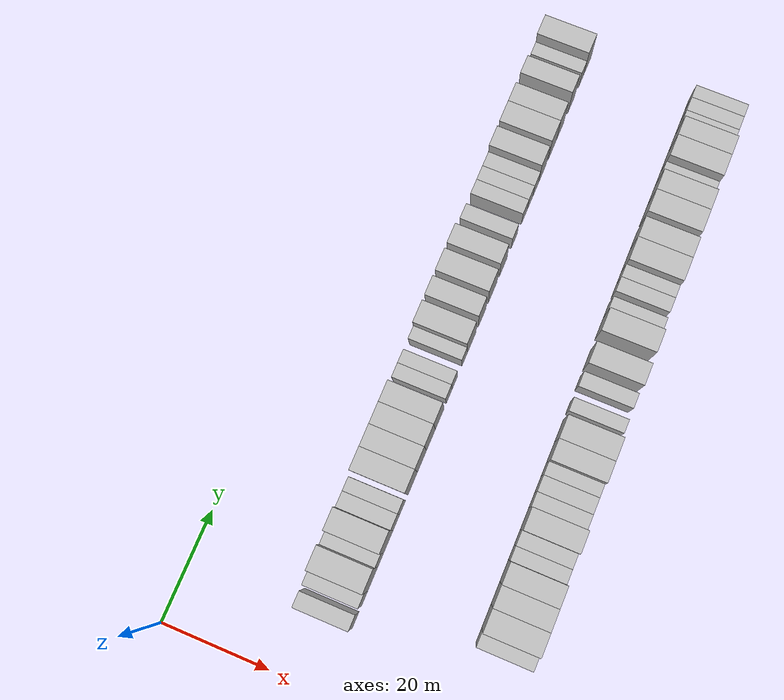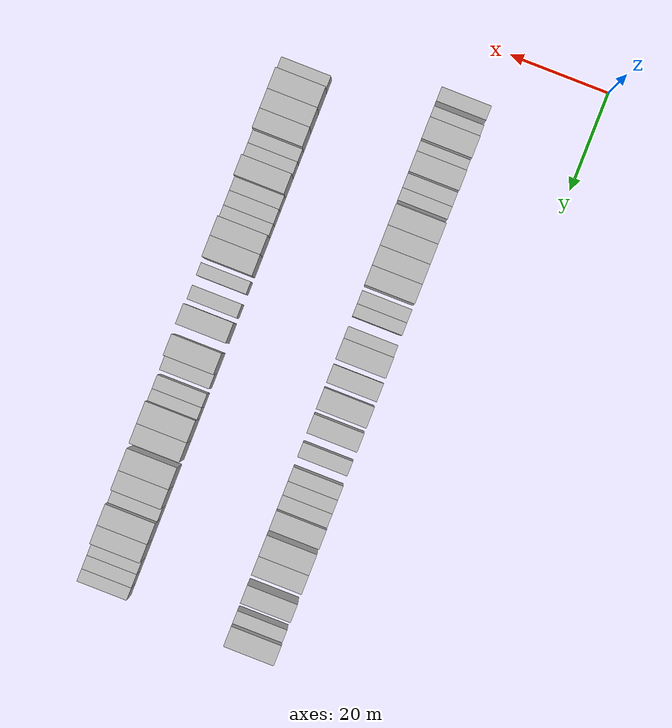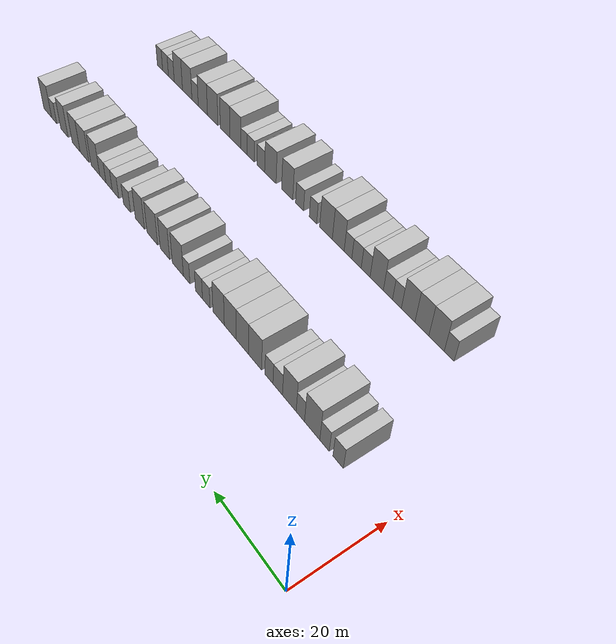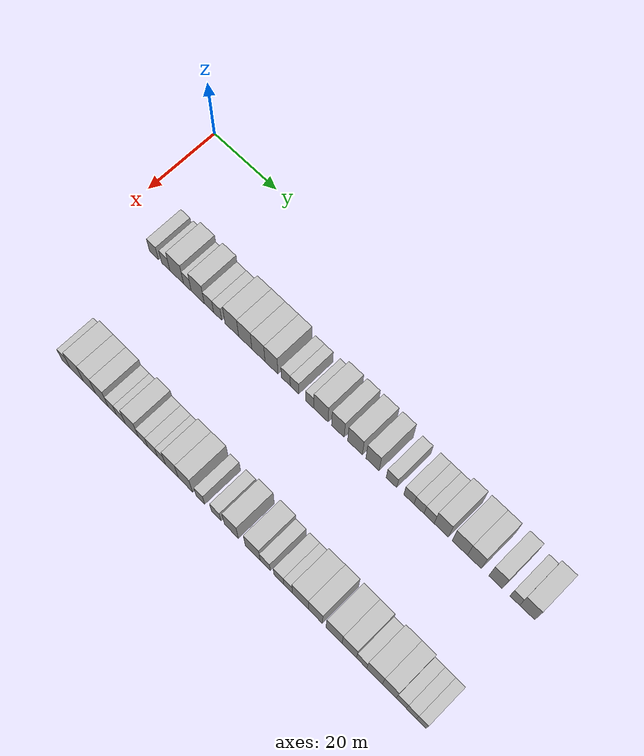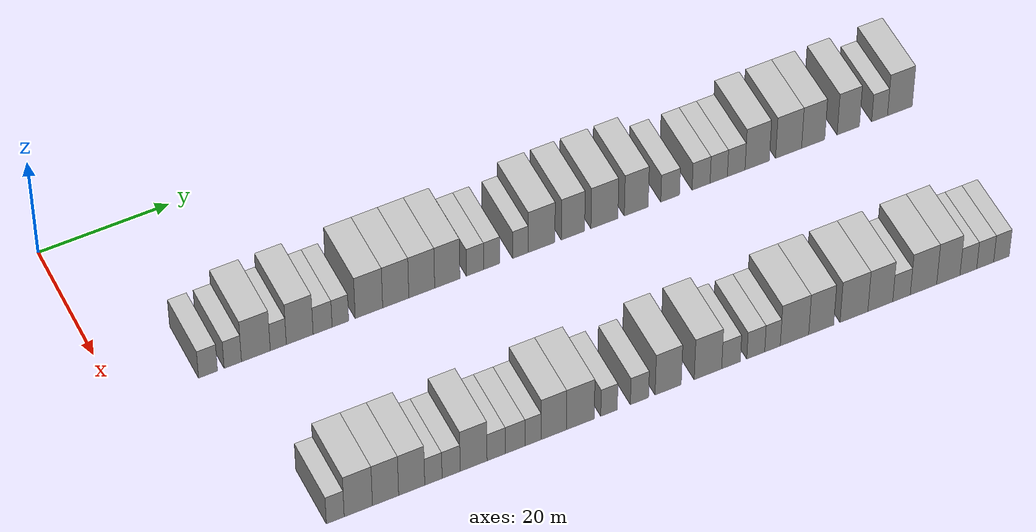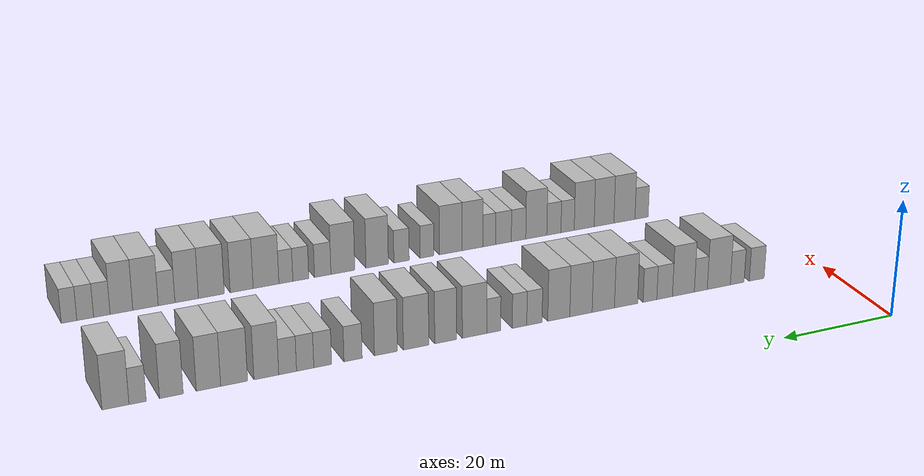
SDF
<sdf version="1.6">
 <world name="default">
  <model name="building_57">
   <static>1</static>
   <pose>25.0000 12.8728 0 0.000000 0.000000 0.000000</pose>
   <link name="link">
    <pose>0 0 3.00 0 0 0</pose>
    <collision name="collision"><geometry><box><size>10.0000 2.8482 6.0000</size></box></geometry></collision>
    <visual name="visual">
     <cast_shadows>0</cast_shadows>
     <geometry><box><size>10.0000 2.8482 6.0000</size></box></geometry>
     <material>
      <script>
       <uri>model://HANNAS_wall/materials/scripts</uri>
       <uri>model://HANNAS_wall/materials/textures</uri>
       <name>vrc/HANNAS_wall</name>
      </script>
     </material>
    </visual>
   </link>
  </model>
  <model name="building_58">
   <static>1</static>
   <pose>25.0000 16.6076 0 0.000000 0.000000 0.000000</pose>
   <link name="link">
    <pose>0 0 3.00 0 0 0</pose>
    <collision name="collision"><geometry><box><size>10.0000 2.6213 6.0000</size></box></geometry></collision>
    <visual name="visual">
     <cast_shadows>0</cast_shadows>
     <geometry><box><size>10.0000 2.6213 6.0000</size></box></geometry>
     <material>
      <script>
       <uri>model://HANNAS_wall/materials/scripts</uri>
       <uri>model://HANNAS_wall/materials/textures</uri>
       <name>vrc/HANNAS_wall</name>
      </script>
     </material>
    </visual>
   </link>
  </model>
  <model name="building_59">
   <static>1</static>
   <pose>25.0000 20.0964 0 0.000000 0.000000 0.000000</pose>
   <link name="link">
    <pose>0 0 4.50 0 0 0</pose>
    <collision name="collision"><geometry><box><size>10.0000 4.3563 9.0000</size></box></geometry></collision>
    <visual name="visual">
     <cast_shadows>0</cast_shadows>
     <geometry><box><size>10.0000 4.3563 9.0000</size></box></geometry>
     <material>
      <script>
       <uri>model://HANNAS_wall/materials/scripts</uri>
       <uri>model://HANNAS_wall/materials/textures</uri>
       <name>vrc/HANNAS_wall</name>
      </script>
     </material>
    </visual>
   </link>
  </model>
  <model name="building_60">
   <static>1</static>
   <pose>25.0000 23.4909 0 0.000000 0.000000 0.000000</pose>
   <link name="link">
    <pose>0 0 3.00 0 0 0</pose>
    <collision name="collision"><geometry><box><size>10.0000 2.4325 6.0000</size></box></geometry></collision>
    <visual name="visual">
     <cast_shadows>0</cast_shadows>
     <geometry><box><size>10.0000 2.4325 6.0000</size></box></geometry>
     <material>
      <script>
       <uri>model://HANNAS_wall/materials/scripts</uri>
       <uri>model://HANNAS_wall/materials/textures</uri>
       <name>vrc/HANNAS_wall</name>
      </script>
     </material>
    </visual>
   </link>
  </model>
  <model name="building_61">
   <static>1</static>
   <pose>25.0000 26.7454 0 0.000000 0.000000 0.000000</pose>
   <link name="link">
    <pose>0 0 4.50 0 0 0</pose>
    <collision name="collision"><geometry><box><size>10.0000 4.0766 9.0000</size></box></geometry></collision>
    <visual name="visual">
     <cast_shadows>0</cast_shadows>
     <geometry><box><size>10.0000 4.0766 9.0000</size></box></geometry>
     <material>
      <script>
       <uri>model://HANNAS_wall/materials/scripts</uri>
       <uri>model://HANNAS_wall/materials/textures</uri>
       <name>vrc/HANNAS_wall</name>
      </script>
     </material>
    </visual>
   </link>
  </model>
  <model name="building_62">
   <static>1</static>
   <pose>25.0000 30.2285 0 0.000000 0.000000 0.000000</pose>
   <link name="link">
    <pose>0 0 3.00 0 0 0</pose>
    <collision name="collision"><geometry><box><size>10.0000 2.8896 6.0000</size></box></geometry></collision>
    <visual name="visual">
     <cast_shadows>0</cast_shadows>
     <geometry><box><size>10.0000 2.8896 6.0000</size></box></geometry>
     <material>
      <script>
       <uri>model://HANNAS_wall/materials/scripts</uri>
       <uri>model://HANNAS_wall/materials/textures</uri>
       <name>vrc/HANNAS_wall</name>
      </script>
     </material>
    </visual>
   </link>
  </model>
  <model name="building_63">
   <static>1</static>
   <pose>25.0000 32.9374 0 0.000000 0.000000 0.000000</pose>
   <link name="link">
    <pose>0 0 3.00 0 0 0</pose>
    <collision name="collision"><geometry><box><size>10.0000 2.5283 6.0000</size></box></geometry></collision>
    <visual name="visual">
     <cast_shadows>0</cast_shadows>
     <geometry><box><size>10.0000 2.5283 6.0000</size></box></geometry>
     <material>
      <script>
       <uri>model://HANNAS_wall/materials/scripts</uri>
       <uri>model://HANNAS_wall/materials/textures</uri>
       <name>vrc/HANNAS_wall</name>
      </script>
     </material>
    </visual>
   </link>
  </model>
  <model name="building_64">
   <static>1</static>
   <pose>25.0000 37.3057 0 0.000000 0.000000 0.000000</pose>
   <link name="link">
    <pose>0 0 4.50 0 0 0</pose>
    <collision name="collision"><geometry><box><size>10.0000 4.2083 9.0000</size></box></geometry></collision>
    <visual name="visual">
     <cast_shadows>0</cast_shadows>
     <geometry><box><size>10.0000 4.2083 9.0000</size></box></geometry>
     <material>
      <script>
       <uri>model://HANNAS_wall/materials/scripts</uri>
       <uri>model://HANNAS_wall/materials/textures</uri>
       <name>vrc/HANNAS_wall</name>
      </script>
     </material>
    </visual>
   </link>
  </model>
  <model name="building_65">
   <static>1</static>
   <pose>25.0000 41.4210 0 0.000000 0.000000 0.000000</pose>
   <link name="link">
    <pose>0 0 4.50 0 0 0</pose>
    <collision name="collision"><geometry><box><size>10.0000 4.0222 9.0000</size></box></geometry></collision>
    <visual name="visual">
     <cast_shadows>0</cast_shadows>
     <geometry><box><size>10.0000 4.0222 9.0000</size></box></geometry>
     <material>
      <script>
       <uri>model://HANNAS_wall/materials/scripts</uri>
       <uri>model://HANNAS_wall/materials/textures</uri>
       <name>vrc/HANNAS_wall</name>
      </script>
     </material>
    </visual>
   </link>
  </model>
  <model name="building_66">
   <static>1</static>
   <pose>25.0000 45.4222 0 0.000000 0.000000 0.000000</pose>
   <link name="link">
    <pose>0 0 4.50 0 0 0</pose>
    <collision name="collision"><geometry><box><size>10.0000 3.9803 9.0000</size></box></geometry></collision>
    <visual name="visual">
     <cast_shadows>0</cast_shadows>
     <geometry><box><size>10.0000 3.9803 9.0000</size></box></geometry>
     <material>
      <script>
       <uri>model://HANNAS_wall/materials/scripts</uri>
       <uri>model://HANNAS_wall/materials/textures</uri>
       <name>vrc/HANNAS_wall</name>
      </script>
     </material>
    </visual>
   </link>
  </model>
  <model name="building_67">
   <static>1</static>
   <pose>25.0000 49.3647 0 0.000000 0.000000 0.000000</pose>
   <link name="link">
    <pose>0 0 4.50 0 0 0</pose>
    <collision name="collision"><geometry><box><size>10.0000 3.9045 9.0000</size></box></geometry></collision>
    <visual name="visual">
     <cast_shadows>0</cast_shadows>
     <geometry><box><size>10.0000 3.9045 9.0000</size></box></geometry>
     <material>
      <script>
       <uri>model://HANNAS_wall/materials/scripts</uri>
       <uri>model://HANNAS_wall/materials/textures</uri>
       <name>vrc/HANNAS_wall</name>
      </script>
     </material>
    </visual>
   </link>
  </model>
  <model name="building_68">
   <static>1</static>
   <pose>25.0000 53.6548 0 0.000000 0.000000 0.000000</pose>
   <link name="link">
    <pose>0 0 3.00 0 0 0</pose>
    <collision name="collision"><geometry><box><size>10.0000 2.6757 6.0000</size></box></geometry></collision>
    <visual name="visual">
     <cast_shadows>0</cast_shadows>
     <geometry><box><size>10.0000 2.6757 6.0000</size></box></geometry>
     <material>
      <script>
       <uri>model://HANNAS_wall/materials/scripts</uri>
       <uri>model://HANNAS_wall/materials/textures</uri>
       <name>vrc/HANNAS_wall</name>
      </script>
     </material>
    </visual>
   </link>
  </model>
  <model name="building_69">
   <static>1</static>
   <pose>25.0000 56.2547 0 0.000000 0.000000 0.000000</pose>
   <link name="link">
    <pose>0 0 3.00 0 0 0</pose>
    <collision name="collision"><geometry><box><size>10.0000 2.5243 6.0000</size></box></geometry></collision>
    <visual name="visual">
     <cast_shadows>0</cast_shadows>
     <geometry><box><size>10.0000 2.5243 6.0000</size></box></geometry>
     <material>
      <script>
       <uri>model://HANNAS_wall/materials/scripts</uri>
       <uri>model://HANNAS_wall/materials/textures</uri>
       <name>vrc/HANNAS_wall</name>
      </script>
     </material>
    </visual>
   </link>
  </model>
  <model name="building_70">
   <static>1</static>
   <pose>25.0000 60.7227 0 0.000000 0.000000 0.000000</pose>
   <link name="link">
    <pose>0 0 3.00 0 0 0</pose>
    <collision name="collision"><geometry><box><size>10.0000 2.4117 6.0000</size></box></geometry></collision>
    <visual name="visual">
     <cast_shadows>0</cast_shadows>
     <geometry><box><size>10.0000 2.4117 6.0000</size></box></geometry>
     <material>
      <script>
       <uri>model://HANNAS_wall/materials/scripts</uri>
       <uri>model://HANNAS_wall/materials/textures</uri>
       <name>vrc/HANNAS_wall</name>
      </script>
     </material>
    </visual>
   </link>
  </model>
  <model name="building_71">
   <static>1</static>
   <pose>25.0000 64.0169 0 0.000000 0.000000 0.000000</pose>
   <link name="link">
    <pose>0 0 4.50 0 0 0</pose>
    <collision name="collision"><geometry><box><size>10.0000 4.1768 9.0000</size></box></geometry></collision>
    <visual name="visual">
     <cast_shadows>0</cast_shadows>
     <geometry><box><size>10.0000 4.1768 9.0000</size></box></geometry>
     <material>
      <script>
       <uri>model://HANNAS_wall/materials/scripts</uri>
       <uri>model://HANNAS_wall/materials/textures</uri>
       <name>vrc/HANNAS_wall</name>
      </script>
     </material>
    </visual>
   </link>
  </model>
  <model name="building_72">
   <static>1</static>
   <pose>25.0000 68.9318 0 0.000000 0.000000 0.000000</pose>
   <link name="link">
    <pose>0 0 4.50 0 0 0</pose>
    <collision name="collision"><geometry><box><size>10.0000 3.6529 9.0000</size></box></geometry></collision>
    <visual name="visual">
     <cast_shadows>0</cast_shadows>
     <geometry><box><size>10.0000 3.6529 9.0000</size></box></geometry>
     <material>
      <script>
       <uri>model://HANNAS_wall/materials/scripts</uri>
       <uri>model://HANNAS_wall/materials/textures</uri>
       <name>vrc/HANNAS_wall</name>
      </script>
     </material>
    </visual>
   </link>
  </model>
  <model name="building_73">
   <static>1</static>
   <pose>25.0000 73.8826 0 0.000000 0.000000 0.000000</pose>
   <link name="link">
    <pose>0 0 4.50 0 0 0</pose>
    <collision name="collision"><geometry><box><size>10.0000 4.2488 9.0000</size></box></geometry></collision>
    <visual name="visual">
     <cast_shadows>0</cast_shadows>
     <geometry><box><size>10.0000 4.2488 9.0000</size></box></geometry>
     <material>
      <script>
       <uri>model://HANNAS_wall/materials/scripts</uri>
       <uri>model://HANNAS_wall/materials/textures</uri>
       <name>vrc/HANNAS_wall</name>
      </script>
     </material>
    </visual>
   </link>
  </model>
  <model name="building_74">
   <static>1</static>
   <pose>25.0000 78.8951 0 0.000000 0.000000 0.000000</pose>
   <link name="link">
    <pose>0 0 4.50 0 0 0</pose>
    <collision name="collision"><geometry><box><size>10.0000 3.7763 9.0000</size></box></geometry></collision>
    <visual name="visual">
     <cast_shadows>0</cast_shadows>
     <geometry><box><size>10.0000 3.7763 9.0000</size></box></geometry>
     <material>
      <script>
       <uri>model://HANNAS_wall/materials/scripts</uri>
       <uri>model://HANNAS_wall/materials/textures</uri>
       <name>vrc/HANNAS_wall</name>
      </script>
     </material>
    </visual>
   </link>
  </model>
  <model name="building_75">
   <static>1</static>
   <pose>25.0000 84.2677 0 0.000000 0.000000 0.000000</pose>
   <link name="link">
    <pose>0 0 3.00 0 0 0</pose>
    <collision name="collision"><geometry><box><size>10.0000 2.9688 6.0000</size></box></geometry></collision>
    <visual name="visual">
     <cast_shadows>0</cast_shadows>
     <geometry><box><size>10.0000 2.9688 6.0000</size></box></geometry>
     <material>
      <script>
       <uri>model://HANNAS_wall/materials/scripts</uri>
       <uri>model://HANNAS_wall/materials/textures</uri>
       <name>vrc/HANNAS_wall</name>
      </script>
     </material>
    </visual>
   </link>
  </model>
  <model name="building_76">
   <static>1</static>
   <pose>25.0000 89.1856 0 0.000000 0.000000 0.000000</pose>
   <link name="link">
    <pose>0 0 3.00 0 0 0</pose>
    <collision name="collision"><geometry><box><size>10.0000 2.8670 6.0000</size></box></geometry></collision>
    <visual name="visual">
     <cast_shadows>0</cast_shadows>
     <geometry><box><size>10.0000 2.8670 6.0000</size></box></geometry>
     <material>
      <script>
       <uri>model://HANNAS_wall/materials/scripts</uri>
       <uri>model://HANNAS_wall/materials/textures</uri>
       <name>vrc/HANNAS_wall</name>
      </script>
     </material>
    </visual>
   </link>
  </model>
  <model name="building_77">
   <static>1</static>
   <pose>25.0000 91.9972 0 0.000000 0.000000 0.000000</pose>
   <link name="link">
    <pose>0 0 3.00 0 0 0</pose>
    <collision name="collision"><geometry><box><size>10.0000 2.7563 6.0000</size></box></geometry></collision>
    <visual name="visual">
     <cast_shadows>0</cast_shadows>
     <geometry><box><size>10.0000 2.7563 6.0000</size></box></geometry>
     <material>
      <script>
       <uri>model://HANNAS_wall/materials/scripts</uri>
       <uri>model://HANNAS_wall/materials/textures</uri>
       <name>vrc/HANNAS_wall</name>
      </script>
     </material>
    </visual>
   </link>
  </model>
  <model name="building_78">
   <static>1</static>
   <pose>25.0000 94.7882 0 0.000000 0.000000 0.000000</pose>
   <link name="link">
    <pose>0 0 3.00 0 0 0</pose>
    <collision name="collision"><geometry><box><size>10.0000 2.8256 6.0000</size></box></geometry></collision>
    <visual name="visual">
     <cast_shadows>0</cast_shadows>
     <geometry><box><size>10.0000 2.8256 6.0000</size></box></geometry>
     <material>
      <script>
       <uri>model://HANNAS_wall/materials/scripts</uri>
       <uri>model://HANNAS_wall/materials/textures</uri>
       <name>vrc/HANNAS_wall</name>
      </script>
     </material>
    </visual>
   </link>
  </model>
  <model name="building_79">
   <static>1</static>
   <pose>25.0000 98.1517 0 0.000000 0.000000 0.000000</pose>
   <link name="link">
    <pose>0 0 4.50 0 0 0</pose>
    <collision name="collision"><geometry><box><size>10.0000 3.9015 9.0000</size></box></geometry></collision>
    <visual name="visual">
     <cast_shadows>0</cast_shadows>
     <geometry><box><size>10.0000 3.9015 9.0000</size></box></geometry>
     <material>
      <script>
       <uri>model://HANNAS_wall/materials/scripts</uri>
       <uri>model://HANNAS_wall/materials/textures</uri>
       <name>vrc/HANNAS_wall</name>
      </script>
     </material>
    </visual>
   </link>
  </model>
  <model name="building_80">
   <static>1</static>
   <pose>25.0000 103.1936 0 0.000000 0.000000 0.000000</pose>
   <link name="link">
    <pose>0 0 4.50 0 0 0</pose>
    <collision name="collision"><geometry><box><size>10.0000 4.1823 9.0000</size></box></geometry></collision>
    <visual name="visual">
     <cast_shadows>0</cast_shadows>
     <geometry><box><size>10.0000 4.1823 9.0000</size></box></geometry>
     <material>
      <script>
       <uri>model://HANNAS_wall/materials/scripts</uri>
       <uri>model://HANNAS_wall/materials/textures</uri>
       <name>vrc/HANNAS_wall</name>
      </script>
     </material>
    </visual>
   </link>
  </model>
  <model name="building_81">
   <static>1</static>
   <pose>25.0000 107.1565 0 0.000000 0.000000 0.000000</pose>
   <link name="link">
    <pose>0 0 4.50 0 0 0</pose>
    <collision name="collision"><geometry><box><size>10.0000 3.7436 9.0000</size></box></geometry></collision>
    <visual name="visual">
     <cast_shadows>0</cast_shadows>
     <geometry><box><size>10.0000 3.7436 9.0000</size></box></geometry>
     <material>
      <script>
       <uri>model://HANNAS_wall/materials/scripts</uri>
       <uri>model://HANNAS_wall/materials/textures</uri>
       <name>vrc/HANNAS_wall</name>
      </script>
     </material>
    </visual>
   </link>
  </model>
  <model name="building_82">
   <static>1</static>
   <pose>25.0000 112.8291 0 0.000000 0.000000 0.000000</pose>
   <link name="link">
    <pose>0 0 4.50 0 0 0</pose>
    <collision name="collision"><geometry><box><size>10.0000 3.6015 9.0000</size></box></geometry></collision>
    <visual name="visual">
     <cast_shadows>0</cast_shadows>
     <geometry><box><size>10.0000 3.6015 9.0000</size></box></geometry>
     <material>
      <script>
       <uri>model://HANNAS_wall/materials/scripts</uri>
       <uri>model://HANNAS_wall/materials/textures</uri>
       <name>vrc/HANNAS_wall</name>
      </script>
     </material>
    </visual>
   </link>
  </model>
  <model name="building_83">
   <static>1</static>
   <pose>25.0000 117.9180 0 0.000000 0.000000 0.000000</pose>
   <link name="link">
    <pose>0 0 3.00 0 0 0</pose>
    <collision name="collision"><geometry><box><size>10.0000 2.5764 6.0000</size></box></geometry></collision>
    <visual name="visual">
     <cast_shadows>0</cast_shadows>
     <geometry><box><size>10.0000 2.5764 6.0000</size></box></geometry>
     <material>
      <script>
       <uri>model://HANNAS_wall/materials/scripts</uri>
       <uri>model://HANNAS_wall/materials/textures</uri>
       <name>vrc/HANNAS_wall</name>
      </script>
     </material>
    </visual>
   </link>
  </model>
  <model name="building_84">
   <static>1</static>
   <pose>25.0000 121.2153 0 0.000000 0.000000 0.000000</pose>
   <link name="link">
    <pose>0 0 4.50 0 0 0</pose>
    <collision name="collision"><geometry><box><size>10.0000 4.0181 9.0000</size></box></geometry></collision>
    <visual name="visual">
     <cast_shadows>0</cast_shadows>
     <geometry><box><size>10.0000 4.0181 9.0000</size></box></geometry>
     <material>
      <script>
       <uri>model://HANNAS_wall/materials/scripts</uri>
       <uri>model://HANNAS_wall/materials/textures</uri>
       <name>vrc/HANNAS_wall</name>
      </script>
     </material>
    </visual>
   </link>
  </model>
  <model name="building_169">
   <static>1</static>
   <pose>55.0000 18.4525 0 0.000000 0.000000 0.000000</pose>
   <link name="link">
    <pose>0 0 3.00 0 0 0</pose>
    <collision name="collision"><geometry><box><size>10.0000 2.6541 6.0000</size></box></geometry></collision>
    <visual name="visual">
     <cast_shadows>0</cast_shadows>
     <geometry><box><size>10.0000 2.6541 6.0000</size></box></geometry>
     <material>
      <script>
       <uri>model://HANNAS_wall/materials/scripts</uri>
       <uri>model://HANNAS_wall/materials/textures</uri>
       <name>vrc/HANNAS_wall</name>
      </script>
     </material>
    </visual>
   </link>
  </model>
  <model name="building_170">
   <static>1</static>
   <pose>55.0000 21.8808 0 0.000000 0.000000 0.000000</pose>
   <link name="link">
    <pose>0 0 4.50 0 0 0</pose>
    <collision name="collision"><geometry><box><size>10.0000 4.2025 9.0000</size></box></geometry></collision>
    <visual name="visual">
     <cast_shadows>0</cast_shadows>
     <geometry><box><size>10.0000 4.2025 9.0000</size></box></geometry>
     <material>
      <script>
       <uri>model://HANNAS_wall/materials/scripts</uri>
       <uri>model://HANNAS_wall/materials/textures</uri>
       <name>vrc/HANNAS_wall</name>
      </script>
     </material>
    </visual>
   </link>
  </model>
  <model name="building_171">
   <static>1</static>
   <pose>55.0000 25.9336 0 0.000000 0.000000 0.000000</pose>
   <link name="link">
    <pose>0 0 4.50 0 0 0</pose>
    <collision name="collision"><geometry><box><size>10.0000 3.9031 9.0000</size></box></geometry></collision>
    <visual name="visual">
     <cast_shadows>0</cast_shadows>
     <geometry><box><size>10.0000 3.9031 9.0000</size></box></geometry>
     <material>
      <script>
       <uri>model://HANNAS_wall/materials/scripts</uri>
       <uri>model://HANNAS_wall/materials/textures</uri>
       <name>vrc/HANNAS_wall</name>
      </script>
     </material>
    </visual>
   </link>
  </model>
  <model name="building_172">
   <static>1</static>
   <pose>55.0000 29.8367 0 0.000000 0.000000 0.000000</pose>
   <link name="link">
    <pose>0 0 4.50 0 0 0</pose>
    <collision name="collision"><geometry><box><size>10.0000 3.9031 9.0000</size></box></geometry></collision>
    <visual name="visual">
     <cast_shadows>0</cast_shadows>
     <geometry><box><size>10.0000 3.9031 9.0000</size></box></geometry>
     <material>
      <script>
       <uri>model://HANNAS_wall/materials/scripts</uri>
       <uri>model://HANNAS_wall/materials/textures</uri>
       <name>vrc/HANNAS_wall</name>
      </script>
     </material>
    </visual>
   </link>
  </model>
  <model name="building_173">
   <static>1</static>
   <pose>55.0000 33.0873 0 0.000000 0.000000 0.000000</pose>
   <link name="link">
    <pose>0 0 3.00 0 0 0</pose>
    <collision name="collision"><geometry><box><size>10.0000 2.5982 6.0000</size></box></geometry></collision>
    <visual name="visual">
     <cast_shadows>0</cast_shadows>
     <geometry><box><size>10.0000 2.5982 6.0000</size></box></geometry>
     <material>
      <script>
       <uri>model://HANNAS_wall/materials/scripts</uri>
       <uri>model://HANNAS_wall/materials/textures</uri>
       <name>vrc/HANNAS_wall</name>
      </script>
     </material>
    </visual>
   </link>
  </model>
  <model name="building_174">
   <static>1</static>
   <pose>55.0000 35.7486 0 0.000000 0.000000 0.000000</pose>
   <link name="link">
    <pose>0 0 3.00 0 0 0</pose>
    <collision name="collision"><geometry><box><size>10.0000 2.7242 6.0000</size></box></geometry></collision>
    <visual name="visual">
     <cast_shadows>0</cast_shadows>
     <geometry><box><size>10.0000 2.7242 6.0000</size></box></geometry>
     <material>
      <script>
       <uri>model://HANNAS_wall/materials/scripts</uri>
       <uri>model://HANNAS_wall/materials/textures</uri>
       <name>vrc/HANNAS_wall</name>
      </script>
     </material>
    </visual>
   </link>
  </model>
  <model name="building_175">
   <static>1</static>
   <pose>55.0000 39.1341 0 0.000000 0.000000 0.000000</pose>
   <link name="link">
    <pose>0 0 4.50 0 0 0</pose>
    <collision name="collision"><geometry><box><size>10.0000 4.0468 9.0000</size></box></geometry></collision>
    <visual name="visual">
     <cast_shadows>0</cast_shadows>
     <geometry><box><size>10.0000 4.0468 9.0000</size></box></geometry>
     <material>
      <script>
       <uri>model://HANNAS_wall/materials/scripts</uri>
       <uri>model://HANNAS_wall/materials/textures</uri>
       <name>vrc/HANNAS_wall</name>
      </script>
     </material>
    </visual>
   </link>
  </model>
  <model name="building_176">
   <static>1</static>
   <pose>55.0000 42.5392 0 0.000000 0.000000 0.000000</pose>
   <link name="link">
    <pose>0 0 3.00 0 0 0</pose>
    <collision name="collision"><geometry><box><size>10.0000 2.7634 6.0000</size></box></geometry></collision>
    <visual name="visual">
     <cast_shadows>0</cast_shadows>
     <geometry><box><size>10.0000 2.7634 6.0000</size></box></geometry>
     <material>
      <script>
       <uri>model://HANNAS_wall/materials/scripts</uri>
       <uri>model://HANNAS_wall/materials/textures</uri>
       <name>vrc/HANNAS_wall</name>
      </script>
     </material>
    </visual>
   </link>
  </model>
  <model name="building_177">
   <static>1</static>
   <pose>55.0000 45.4020 0 0.000000 0.000000 0.000000</pose>
   <link name="link">
    <pose>0 0 3.00 0 0 0</pose>
    <collision name="collision"><geometry><box><size>10.0000 2.9623 6.0000</size></box></geometry></collision>
    <visual name="visual">
     <cast_shadows>0</cast_shadows>
     <geometry><box><size>10.0000 2.9623 6.0000</size></box></geometry>
     <material>
      <script>
       <uri>model://HANNAS_wall/materials/scripts</uri>
       <uri>model://HANNAS_wall/materials/textures</uri>
       <name>vrc/HANNAS_wall</name>
      </script>
     </material>
    </visual>
   </link>
  </model>
  <model name="building_178">
   <static>1</static>
   <pose>55.0000 48.1084 0 0.000000 0.000000 0.000000</pose>
   <link name="link">
    <pose>0 0 3.00 0 0 0</pose>
    <collision name="collision"><geometry><box><size>10.0000 2.4506 6.0000</size></box></geometry></collision>
    <visual name="visual">
     <cast_shadows>0</cast_shadows>
     <geometry><box><size>10.0000 2.4506 6.0000</size></box></geometry>
     <material>
      <script>
       <uri>model://HANNAS_wall/materials/scripts</uri>
       <uri>model://HANNAS_wall/materials/textures</uri>
       <name>vrc/HANNAS_wall</name>
      </script>
     </material>
    </visual>
   </link>
  </model>
  <model name="building_179">
   <static>1</static>
   <pose>55.0000 51.2631 0 0.000000 0.000000 0.000000</pose>
   <link name="link">
    <pose>0 0 4.50 0 0 0</pose>
    <collision name="collision"><geometry><box><size>10.0000 3.8587 9.0000</size></box></geometry></collision>
    <visual name="visual">
     <cast_shadows>0</cast_shadows>
     <geometry><box><size>10.0000 3.8587 9.0000</size></box></geometry>
     <material>
      <script>
       <uri>model://HANNAS_wall/materials/scripts</uri>
       <uri>model://HANNAS_wall/materials/textures</uri>
       <name>vrc/HANNAS_wall</name>
      </script>
     </material>
    </visual>
   </link>
  </model>
  <model name="building_180">
   <static>1</static>
   <pose>55.0000 55.3109 0 0.000000 0.000000 0.000000</pose>
   <link name="link">
    <pose>0 0 4.50 0 0 0</pose>
    <collision name="collision"><geometry><box><size>10.0000 4.2369 9.0000</size></box></geometry></collision>
    <visual name="visual">
     <cast_shadows>0</cast_shadows>
     <geometry><box><size>10.0000 4.2369 9.0000</size></box></geometry>
     <material>
      <script>
       <uri>model://HANNAS_wall/materials/scripts</uri>
       <uri>model://HANNAS_wall/materials/textures</uri>
       <name>vrc/HANNAS_wall</name>
      </script>
     </material>
    </visual>
   </link>
  </model>
  <model name="building_181">
   <static>1</static>
   <pose>55.0000 59.6956 0 0.000000 0.000000 0.000000</pose>
   <link name="link">
    <pose>0 0 3.00 0 0 0</pose>
    <collision name="collision"><geometry><box><size>10.0000 2.5326 6.0000</size></box></geometry></collision>
    <visual name="visual">
     <cast_shadows>0</cast_shadows>
     <geometry><box><size>10.0000 2.5326 6.0000</size></box></geometry>
     <material>
      <script>
       <uri>model://HANNAS_wall/materials/scripts</uri>
       <uri>model://HANNAS_wall/materials/textures</uri>
       <name>vrc/HANNAS_wall</name>
      </script>
     </material>
    </visual>
   </link>
  </model>
  <model name="building_182">
   <static>1</static>
   <pose>55.0000 64.3598 0 0.000000 0.000000 0.000000</pose>
   <link name="link">
    <pose>0 0 3.00 0 0 0</pose>
    <collision name="collision"><geometry><box><size>10.0000 2.7957 6.0000</size></box></geometry></collision>
    <visual name="visual">
     <cast_shadows>0</cast_shadows>
     <geometry><box><size>10.0000 2.7957 6.0000</size></box></geometry>
     <material>
      <script>
       <uri>model://HANNAS_wall/materials/scripts</uri>
       <uri>model://HANNAS_wall/materials/textures</uri>
       <name>vrc/HANNAS_wall</name>
      </script>
     </material>
    </visual>
   </link>
  </model>
  <model name="building_183">
   <static>1</static>
   <pose>55.0000 68.7739 0 0.000000 0.000000 0.000000</pose>
   <link name="link">
    <pose>0 0 4.50 0 0 0</pose>
    <collision name="collision"><geometry><box><size>10.0000 4.0324 9.0000</size></box></geometry></collision>
    <visual name="visual">
     <cast_shadows>0</cast_shadows>
     <geometry><box><size>10.0000 4.0324 9.0000</size></box></geometry>
     <material>
      <script>
       <uri>model://HANNAS_wall/materials/scripts</uri>
       <uri>model://HANNAS_wall/materials/textures</uri>
       <name>vrc/HANNAS_wall</name>
      </script>
     </material>
    </visual>
   </link>
  </model>
  <model name="building_184">
   <static>1</static>
   <pose>55.0000 74.9194 0 0.000000 0.000000 0.000000</pose>
   <link name="link">
    <pose>0 0 4.50 0 0 0</pose>
    <collision name="collision"><geometry><box><size>10.0000 4.2587 9.0000</size></box></geometry></collision>
    <visual name="visual">
     <cast_shadows>0</cast_shadows>
     <geometry><box><size>10.0000 4.2587 9.0000</size></box></geometry>
     <material>
      <script>
       <uri>model://HANNAS_wall/materials/scripts</uri>
       <uri>model://HANNAS_wall/materials/textures</uri>
       <name>vrc/HANNAS_wall</name>
      </script>
     </material>
    </visual>
   </link>
  </model>
  <model name="building_185">
   <static>1</static>
   <pose>55.0000 78.4982 0 0.000000 0.000000 0.000000</pose>
   <link name="link">
    <pose>0 0 3.00 0 0 0</pose>
    <collision name="collision"><geometry><box><size>10.0000 2.8988 6.0000</size></box></geometry></collision>
    <visual name="visual">
     <cast_shadows>0</cast_shadows>
     <geometry><box><size>10.0000 2.8988 6.0000</size></box></geometry>
     <material>
      <script>
       <uri>model://HANNAS_wall/materials/scripts</uri>
       <uri>model://HANNAS_wall/materials/textures</uri>
       <name>vrc/HANNAS_wall</name>
      </script>
     </material>
    </visual>
   </link>
  </model>
  <model name="building_186">
   <static>1</static>
   <pose>55.0000 82.3415 0 0.000000 0.000000 0.000000</pose>
   <link name="link">
    <pose>0 0 3.00 0 0 0</pose>
    <collision name="collision"><geometry><box><size>10.0000 2.7878 6.0000</size></box></geometry></collision>
    <visual name="visual">
     <cast_shadows>0</cast_shadows>
     <geometry><box><size>10.0000 2.7878 6.0000</size></box></geometry>
     <material>
      <script>
       <uri>model://HANNAS_wall/materials/scripts</uri>
       <uri>model://HANNAS_wall/materials/textures</uri>
       <name>vrc/HANNAS_wall</name>
      </script>
     </material>
    </visual>
   </link>
  </model>
  <model name="building_187">
   <static>1</static>
   <pose>55.0000 84.9516 0 0.000000 0.000000 0.000000</pose>
   <link name="link">
    <pose>0 0 3.00 0 0 0</pose>
    <collision name="collision"><geometry><box><size>10.0000 2.4324 6.0000</size></box></geometry></collision>
    <visual name="visual">
     <cast_shadows>0</cast_shadows>
     <geometry><box><size>10.0000 2.4324 6.0000</size></box></geometry>
     <material>
      <script>
       <uri>model://HANNAS_wall/materials/scripts</uri>
       <uri>model://HANNAS_wall/materials/textures</uri>
       <name>vrc/HANNAS_wall</name>
      </script>
     </material>
    </visual>
   </link>
  </model>
  <model name="building_188">
   <static>1</static>
   <pose>55.0000 88.3906 0 0.000000 0.000000 0.000000</pose>
   <link name="link">
    <pose>0 0 4.50 0 0 0</pose>
    <collision name="collision"><geometry><box><size>10.0000 4.4454 9.0000</size></box></geometry></collision>
    <visual name="visual">
     <cast_shadows>0</cast_shadows>
     <geometry><box><size>10.0000 4.4454 9.0000</size></box></geometry>
     <material>
      <script>
       <uri>model://HANNAS_wall/materials/scripts</uri>
       <uri>model://HANNAS_wall/materials/textures</uri>
       <name>vrc/HANNAS_wall</name>
      </script>
     </material>
    </visual>
   </link>
  </model>
  <model name="building_189">
   <static>1</static>
   <pose>55.0000 92.5746 0 0.000000 0.000000 0.000000</pose>
   <link name="link">
    <pose>0 0 4.50 0 0 0</pose>
    <collision name="collision"><geometry><box><size>10.0000 3.9228 9.0000</size></box></geometry></collision>
    <visual name="visual">
     <cast_shadows>0</cast_shadows>
     <geometry><box><size>10.0000 3.9228 9.0000</size></box></geometry>
     <material>
      <script>
       <uri>model://HANNAS_wall/materials/scripts</uri>
       <uri>model://HANNAS_wall/materials/textures</uri>
       <name>vrc/HANNAS_wall</name>
      </script>
     </material>
    </visual>
   </link>
  </model>
  <model name="building_190">
   <static>1</static>
   <pose>55.0000 97.7264 0 0.000000 0.000000 0.000000</pose>
   <link name="link">
    <pose>0 0 4.50 0 0 0</pose>
    <collision name="collision"><geometry><box><size>10.0000 4.3808 9.0000</size></box></geometry></collision>
    <visual name="visual">
     <cast_shadows>0</cast_shadows>
     <geometry><box><size>10.0000 4.3808 9.0000</size></box></geometry>
     <material>
      <script>
       <uri>model://HANNAS_wall/materials/scripts</uri>
       <uri>model://HANNAS_wall/materials/textures</uri>
       <name>vrc/HANNAS_wall</name>
      </script>
     </material>
    </visual>
   </link>
  </model>
  <model name="building_191">
   <static>1</static>
   <pose>55.0000 101.8810 0 0.000000 0.000000 0.000000</pose>
   <link name="link">
    <pose>0 0 4.50 0 0 0</pose>
    <collision name="collision"><geometry><box><size>10.0000 3.9283 9.0000</size></box></geometry></collision>
    <visual name="visual">
     <cast_shadows>0</cast_shadows>
     <geometry><box><size>10.0000 3.9283 9.0000</size></box></geometry>
     <material>
      <script>
       <uri>model://HANNAS_wall/materials/scripts</uri>
       <uri>model://HANNAS_wall/materials/textures</uri>
       <name>vrc/HANNAS_wall</name>
      </script>
     </material>
    </visual>
   </link>
  </model>
  <model name="building_192">
   <static>1</static>
   <pose>55.0000 105.2362 0 0.000000 0.000000 0.000000</pose>
   <link name="link">
    <pose>0 0 3.00 0 0 0</pose>
    <collision name="collision"><geometry><box><size>10.0000 2.7821 6.0000</size></box></geometry></collision>
    <visual name="visual">
     <cast_shadows>0</cast_shadows>
     <geometry><box><size>10.0000 2.7821 6.0000</size></box></geometry>
     <material>
      <script>
       <uri>model://HANNAS_wall/materials/scripts</uri>
       <uri>model://HANNAS_wall/materials/textures</uri>
       <name>vrc/HANNAS_wall</name>
      </script>
     </material>
    </visual>
   </link>
  </model>
  <model name="building_193">
   <static>1</static>
   <pose>55.0000 108.7216 0 0.000000 0.000000 0.000000</pose>
   <link name="link">
    <pose>0 0 4.50 0 0 0</pose>
    <collision name="collision"><geometry><box><size>10.0000 4.1889 9.0000</size></box></geometry></collision>
    <visual name="visual">
     <cast_shadows>0</cast_shadows>
     <geometry><box><size>10.0000 4.1889 9.0000</size></box></geometry>
     <material>
      <script>
       <uri>model://HANNAS_wall/materials/scripts</uri>
       <uri>model://HANNAS_wall/materials/textures</uri>
       <name>vrc/HANNAS_wall</name>
      </script>
     </material>
    </visual>
   </link>
  </model>
  <model name="building_194">
   <static>1</static>
   <pose>55.0000 112.6707 0 0.000000 0.000000 0.000000</pose>
   <link name="link">
    <pose>0 0 4.50 0 0 0</pose>
    <collision name="collision"><geometry><box><size>10.0000 3.7093 9.0000</size></box></geometry></collision>
    <visual name="visual">
     <cast_shadows>0</cast_shadows>
     <geometry><box><size>10.0000 3.7093 9.0000</size></box></geometry>
     <material>
      <script>
       <uri>model://HANNAS_wall/materials/scripts</uri>
       <uri>model://HANNAS_wall/materials/textures</uri>
       <name>vrc/HANNAS_wall</name>
      </script>
     </material>
    </visual>
   </link>
  </model>
  <model name="building_195">
   <static>1</static>
   <pose>55.0000 115.8642 0 0.000000 0.000000 0.000000</pose>
   <link name="link">
    <pose>0 0 3.00 0 0 0</pose>
    <collision name="collision"><geometry><box><size>10.0000 2.6778 6.0000</size></box></geometry></collision>
    <visual name="visual">
     <cast_shadows>0</cast_shadows>
     <geometry><box><size>10.0000 2.6778 6.0000</size></box></geometry>
     <material>
      <script>
       <uri>model://HANNAS_wall/materials/scripts</uri>
       <uri>model://HANNAS_wall/materials/textures</uri>
       <name>vrc/HANNAS_wall</name>
      </script>
     </material>
    </visual>
   </link>
  </model>
  <model name="building_196">
   <static>1</static>
   <pose>55.0000 118.5560 0 0.000000 0.000000 0.000000</pose>
   <link name="link">
    <pose>0 0 3.00 0 0 0</pose>
    <collision name="collision"><geometry><box><size>10.0000 2.7057 6.0000</size></box></geometry></collision>
    <visual name="visual">
     <cast_shadows>0</cast_shadows>
     <geometry><box><size>10.0000 2.7057 6.0000</size></box></geometry>
     <material>
      <script>
       <uri>model://HANNAS_wall/materials/scripts</uri>
       <uri>model://HANNAS_wall/materials/textures</uri>
       <name>vrc/HANNAS_wall</name>
      </script>
     </material>
    </visual>
   </link>
  </model>
  <model name="building_197">
   <static>1</static>
   <pose>55.0000 121.1563 0 0.000000 0.000000 0.000000</pose>
   <link name="link">
    <pose>0 0 3.00 0 0 0</pose>
    <collision name="collision"><geometry><box><size>10.0000 2.4950 6.0000</size></box></geometry></collision>
    <visual name="visual">
     <cast_shadows>0</cast_shadows>
     <geometry><box><size>10.0000 2.4950 6.0000</size></box></geometry>
     <material>
      <script>
       <uri>model://HANNAS_wall/materials/scripts</uri>
       <uri>model://HANNAS_wall/materials/textures</uri>
       <name>vrc/HANNAS_wall</name>
      </script>
     </material>
    </visual>
   </link>
  </model>
 </world>
</sdf>
